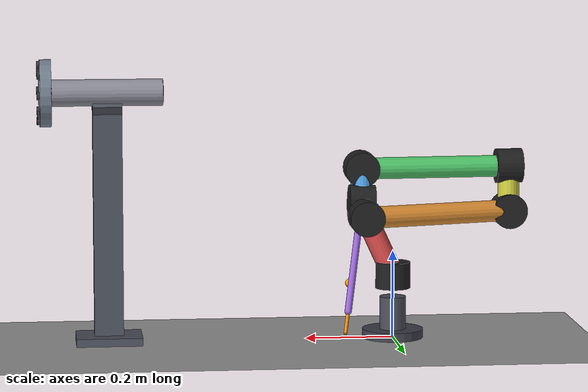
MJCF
<?xml version='1.0' encoding='utf-8'?>
<mujoco model="franka_flange_inspection">
  <compiler angle="radian" autolimits="true" />
  <option gravity="0 0 -9.81" timestep="0.002" integrator="RK4" />
  <size nuser_actuator="5" />
  <statistic extent="1" />
  <visual>
    <global offwidth="1280" offheight="800" />
  </visual>
  <asset>
    <texture name="grid_floor" type="2d" builtin="checker" rgb1="0.72 0.72 0.72" rgb2="0.48 0.48 0.48" width="512" height="512" />
    <material name="floor_mat" texture="grid_floor" texrepeat="8 8" reflectance="0.1" />
    <texture name="skybox" type="skybox" builtin="gradient" rgb1="0.70 0.78 0.90" rgb2="0.20 0.30 0.50" width="512" height="512" />

    </asset>

  <default>
    <geom contype="0" conaffinity="0" condim="3" />
    <site size="0.008" rgba="1 1 0 1" type="sphere" />
    <default class="panda">
      <joint pos="0 0 0" axis="0 0 1" limited="true" />
      <position forcelimited="true" ctrllimited="true" user="1002 40 2001 -0.005 0.005" />
      <default class="panda_viz">
        <geom contype="0" conaffinity="0" group="0" type="mesh" rgba=".92 .92 .95 1" />
      </default>
      <default class="panda_grey_viz">
        <geom contype="0" conaffinity="0" group="0" type="mesh" rgba=".4 .4 .4 1" />
      </default>
      <default class="panda_col">
        <geom contype="0" conaffinity="0" group="3" type="mesh" rgba=".5 .6 .7 .25" />
      </default>
      <default class="panda_arm">
        <joint damping="100" />
      </default>
      <default class="panda_forearm">
        <joint damping="10" />
      </default>
    </default>
  </default>

  <worldbody>
    <light name="sun" pos="0.5 0 3" dir="0 0 -1" diffuse="0.8 0.8 0.8" castshadow="true" />
    <light name="fill" pos="-1 1 2" dir="0.3 -0.3 -1" diffuse="0.3 0.3 0.3" castshadow="false" />
    <geom name="floor" type="plane" size="4 4 0.1" pos="0 0 0" material="floor_mat" contype="1" conaffinity="1" />
    <site name="world_origin" pos="0 0 0" size="0.018" rgba="1 1 1 1" />

    <body name="base" pos="0 0 0">
      <geom name="foot" type="cylinder" fromto="0 0 0 0 0 0.02" size="0.07" rgba="0.25 0.25 0.3 1" />
      <geom name="column" type="cylinder" fromto="0 0 0.02 0 0 0.0948" size="0.03" rgba="0.3 0.3 0.35 1" />
      <body name="link1" pos="0.000000 0.000000 0.144763" quat="0.002699 0.000000 0.000000 -0.999996">
        <joint name="q1" />
        <geom name="link1_g" type="capsule" fromto="0 0 0 -0.061099 0.000000 0.132184" size="0.025" rgba="0.85 0.3 0.3 1" contype="2" conaffinity="1" />
        <geom name="j1_g" type="cylinder" size="0.04 0.03" rgba="0.12 0.12 0.12 1" contype="2" conaffinity="1" />
        <body name="link2" pos="-0.061099 0.000000 0.132184" quat="0.707799 -0.706413 0.000828 0.000830">
          <joint name="q2" />
          <geom name="link2_g" type="capsule" fromto="0 0 0 0.345932 0.000000 0.091502" size="0.025" rgba="0.85 0.55 0.2 1" contype="2" conaffinity="1" />
          <geom name="j2_g" type="cylinder" size="0.04 0.03" rgba="0.12 0.12 0.12 1" contype="2" conaffinity="1" />
          <body name="link3" pos="0.345932 0.000000 0.091502" quat="0.704644 -0.001551 -0.001561 -0.709558">
            <joint name="q3" />
            <geom name="link3_g" type="capsule" fromto="0 0 0 0.103901 0.000000 0.005000" size="0.025" rgba="0.8 0.8 0.25 1" contype="2" conaffinity="1" />
            <geom name="j3_g" type="cylinder" size="0.04 0.03" rgba="0.12 0.12 0.12 1" contype="2" conaffinity="1" />
            <body name="link4" pos="0.103901 0.000000 0.005000" quat="0.705697 0.708499 0.003291 -0.003278">
              <joint name="q4" />
              <geom name="link4_g" type="capsule" fromto="0 0 0 -0.000588 0.000000 0.344628" size="0.025" rgba="0.3 0.75 0.4 1" contype="2" conaffinity="1" />
              <geom name="j4_g" type="cylinder" size="0.04 0.03" rgba="0.12 0.12 0.12 1" contype="2" conaffinity="1" />
              <body name="link5" pos="-0.000588 0.000000 0.344628" quat="0.013053 -0.013195 -0.710781 -0.703168">
                <joint name="q5" />
                <geom name="link5_g" type="capsule" fromto="0 0 0 0.074472 0.000000 -0.024818" size="0.025" rgba="0.3 0.6 0.85 1" contype="2" conaffinity="1" />
                <geom name="j5_g" type="cylinder" size="0.04 0.03" rgba="0.12 0.12 0.12 1" contype="2" conaffinity="1" />
                <body name="link6" pos="0.074472 0.000000 -0.024818" quat="0.501595 -0.493208 0.498313 0.506787">
                  <joint name="q6" />
                  <geom name="link6_g" type="capsule" fromto="0 0 0 0.070882 -0.244194 0.030304" size="0.008" rgba="0.6 0.4 0.85 1" contype="0" conaffinity="0" />
                  <geom name="j6_g" type="cylinder" size="0.04 0.03" rgba="0.12 0.12 0.12 1" contype="0" conaffinity="0" />
                  <body name="ee" pos="0.070882 -0.244194 0.030304" quat="0.724562 -0.689210 0.000000 0.000000">
                    <site name="tcp" size="0.004" rgba="1 0 0 1" />
                    <geom name="torch_g" type="capsule" fromto="0 0 0 0.01384 -0.00829 -0.04733" size="0.004" rgba="0.95 0.55 0.05 1" contype="0" conaffinity="0" />
                    <site name="torch_tip" pos="0.01384 -0.00829 -0.04733" size="0.004" rgba="1 0.5 0 1" />
                    <body name="d405_mount" pos="-0.03667 0.00798 0.05980" quat="0.68961 0.06423 -0.13501 -0.70858">
                      <inertial pos="0 0 0" mass="0.05" diaginertia="1e-5 1e-5 1e-5" />
                      <site name="camera_optical_center" pos="0 0 0" size="0.010" rgba="1 0.6 0 0.9" />
                      <camera name="d405_camera" mode="fixed" pos="0 0 0" fovy="65" />
                    </body>
                  </body>
                </body>
              </body>
            </body>
          </body>
        </body>
      </body>
    </body>
  <body name="pipe_flange_assembly" pos="0.6500 0.0000 0.5700" euler="0 1.5708 0">
      <geom name="pipe_outer" type="cylinder" pos="0 0 0" size="0.03025 0.1250" rgba="0.55 0.55 0.60 1" contype="1" conaffinity="1" />
      <geom name="pipe_bore" type="cylinder" pos="0 0 0" size="0.0271 0.1260" rgba="0.12 0.12 0.12 1" />
      <geom name="flange_disc" type="cylinder" pos="0 0 0.13775" size="0.0760 0.01275" rgba="0.45 0.50 0.56 1" contype="0" conaffinity="0" />
      <geom name="flange_bore" type="cylinder" pos="0 0 0.13775" size="0.03025 0.01375" rgba="0.11 0.11 0.11 1" />
      <geom name="raised_face" type="cylinder" pos="0 0 0.1515" size="0.0502 0.0010" rgba="0.62 0.64 0.67 1" />
      <geom name="raised_bore" type="cylinder" pos="0 0 0.1515" size="0.03025 0.0015" rgba="0.10 0.10 0.10 1" />
      <geom name="bolt_0" type="cylinder" pos=" 0.0628  0.0000 0.1545" size="0.0093 0.0025" rgba="0.22 0.22 0.22 1" />
      <geom name="bolt_1" type="cylinder" pos=" 0.0444  0.0444 0.1545" size="0.0093 0.0025" rgba="0.22 0.22 0.22 1" />
      <geom name="bolt_2" type="cylinder" pos=" 0.0000  0.0628 0.1545" size="0.0093 0.0025" rgba="0.22 0.22 0.22 1" />
      <geom name="bolt_3" type="cylinder" pos="-0.0444  0.0444 0.1545" size="0.0093 0.0025" rgba="0.22 0.22 0.22 1" />
      <geom name="bolt_4" type="cylinder" pos="-0.0628  0.0000 0.1545" size="0.0093 0.0025" rgba="0.22 0.22 0.22 1" />
      <geom name="bolt_5" type="cylinder" pos="-0.0444 -0.0444 0.1545" size="0.0093 0.0025" rgba="0.22 0.22 0.22 1" />
      <geom name="bolt_6" type="cylinder" pos=" 0.0000 -0.0628 0.1545" size="0.0093 0.0025" rgba="0.22 0.22 0.22 1" />
      <geom name="bolt_7" type="cylinder" pos=" 0.0444 -0.0444 0.1545" size="0.0093 0.0025" rgba="0.22 0.22 0.22 1" />
      <geom name="hole_0" type="cylinder" pos=" 0.0628  0.0000 0.1535" size="0.0063 0.0012" rgba="0.04 0.04 0.04 1" />
      <geom name="hole_1" type="cylinder" pos=" 0.0444  0.0444 0.1535" size="0.0063 0.0012" rgba="0.04 0.04 0.04 1" />
      <geom name="hole_2" type="cylinder" pos=" 0.0000  0.0628 0.1535" size="0.0063 0.0012" rgba="0.04 0.04 0.04 1" />
      <geom name="hole_3" type="cylinder" pos="-0.0444  0.0444 0.1535" size="0.0063 0.0012" rgba="0.04 0.04 0.04 1" />
      <geom name="hole_4" type="cylinder" pos="-0.0628  0.0000 0.1535" size="0.0063 0.0012" rgba="0.04 0.04 0.04 1" />
      <geom name="hole_5" type="cylinder" pos="-0.0444 -0.0444 0.1535" size="0.0063 0.0012" rgba="0.04 0.04 0.04 1" />
      <geom name="hole_6" type="cylinder" pos=" 0.0000 -0.0628 0.1535" size="0.0063 0.0012" rgba="0.04 0.04 0.04 1" />
      <geom name="hole_7" type="cylinder" pos=" 0.0444 -0.0444 0.1535" size="0.0063 0.0012" rgba="0.04 0.04 0.04 1" />
      <site name="flange_center" pos="0 0 0.1250" size="0.013" rgba="1 0 0 0" />
      <site name="flange_frame_y" pos="0 0.08 0.1250" size="0.005 0.08" euler="1.5708 0 0" rgba="0 1 0 0" type="cylinder" />
      <site name="flange_frame_x" pos="0.08 0 0.1250" size="0.005 0.08" euler="0 1.5708 0" rgba="1 0 0 0" type="cylinder" />
      <site name="flange_frame_z" pos="0 0 0.2050" size="0.005 0.08" rgba="0 0 1 0" type="cylinder" />
    </body>

    <body name="pipe_supporter" pos="0.6500 0.0000 0.0000">
      <geom name="supp_base"  type="box" pos="0 0 0.009"        size="0.075 0.055 0.009"  rgba="0.30 0.32 0.36 1" contype="0" conaffinity="0"/>
      <geom name="supp_col"   type="box" pos="0 0 0.267"        size="0.033 0.018 0.258"  rgba="0.30 0.32 0.36 1" contype="0" conaffinity="0"/>
      <geom name="supp_arm_l" type="box" pos="0 -0.024 0.534"   size="0.033 0.005 0.016"  euler="-40 0 0" rgba="0.30 0.32 0.36 1" contype="0" conaffinity="0"/>
      <geom name="supp_arm_r" type="box" pos="0  0.024 0.534"   size="0.033 0.005 0.016"  euler=" 40 0 0" rgba="0.30 0.32 0.36 1" contype="0" conaffinity="0"/>
    </body>

    <body name="traj_markers" pos="0 0 0">
      <site name="wp_00" pos="0.4000  0.1652 0.5700" size="0.010" rgba="0 1 1 0" />
      <site name="wp_01" pos="0.4000  0.1627 0.5987" size="0.010" rgba="0 1 1 0" />
      <site name="wp_02" pos="0.4000  0.1553 0.6265" size="0.010" rgba="0 1 1 0" />
      <site name="wp_03" pos="0.4000  0.1431 0.6526" size="0.010" rgba="0 1 1 0" />
      <site name="wp_04" pos="0.4000  0.1266 0.6762" size="0.010" rgba="0 1 1 0" />
      <site name="wp_05" pos="0.4000  0.1062 0.6966" size="0.010" rgba="0 1 1 0" />
      <site name="wp_06" pos="0.4000  0.0826 0.7131" size="0.010" rgba="0 1 1 0" />
      <site name="wp_07" pos="0.4000  0.0565 0.7253" size="0.010" rgba="0 1 1 0" />
      <site name="wp_08" pos="0.4000  0.0287 0.7327" size="0.010" rgba="0 1 1 0" />
      <site name="wp_09" pos="0.4000  0.0000 0.7352" size="0.010" rgba="0 1 1 0" />
      <site name="wp_10" pos="0.4000 -0.0287 0.7327" size="0.010" rgba="0 1 1 0" />
      <site name="wp_11" pos="0.4000 -0.0565 0.7253" size="0.010" rgba="0 1 1 0" />
      <site name="wp_12" pos="0.4000 -0.0826 0.7131" size="0.010" rgba="0 1 1 0" />
      <site name="wp_13" pos="0.4000 -0.1062 0.6966" size="0.010" rgba="0 1 1 0" />
      <site name="wp_14" pos="0.4000 -0.1266 0.6762" size="0.010" rgba="0 1 1 0" />
      <site name="wp_15" pos="0.4000 -0.1431 0.6526" size="0.010" rgba="0 1 1 0" />
      <site name="wp_16" pos="0.4000 -0.1553 0.6265" size="0.010" rgba="0 1 1 0" />
      <site name="wp_17" pos="0.4000 -0.1627 0.5987" size="0.010" rgba="0 1 1 0" />
      <site name="wp_18" pos="0.4000 -0.1652 0.5700" size="0.010" rgba="0 1 1 0" />
      <site name="wp_19" pos="0.4000 -0.1627 0.5413" size="0.010" rgba="0 1 1 0" />
      <site name="wp_20" pos="0.4000 -0.1553 0.5135" size="0.010" rgba="0 1 1 0" />
      <site name="wp_21" pos="0.4000 -0.1431 0.4874" size="0.010" rgba="0 1 1 0" />
      <site name="wp_22" pos="0.4000 -0.1266 0.4638" size="0.010" rgba="0 1 1 0" />
      <site name="wp_23" pos="0.4000 -0.1062 0.4434" size="0.010" rgba="0 1 1 0" />
      <site name="wp_24" pos="0.4000 -0.0826 0.4269" size="0.010" rgba="0 1 1 0" />
      <site name="wp_25" pos="0.4000 -0.0565 0.4147" size="0.010" rgba="0 1 1 0" />
      <site name="wp_26" pos="0.4000 -0.0287 0.4073" size="0.010" rgba="0 1 1 0" />
      <site name="wp_27" pos="0.4000 -0.0000 0.4048" size="0.010" rgba="0 1 1 0" />
      <site name="wp_28" pos="0.4000  0.0287 0.4073" size="0.010" rgba="0 1 1 0" />
      <site name="wp_29" pos="0.4000  0.0565 0.4147" size="0.010" rgba="0 1 1 0" />
      <site name="wp_30" pos="0.4000  0.0826 0.4269" size="0.010" rgba="0 1 1 0" />
      <site name="wp_31" pos="0.4000  0.1062 0.4434" size="0.010" rgba="0 1 1 0" />
      <site name="wp_32" pos="0.4000  0.1266 0.4638" size="0.010" rgba="0 1 1 0" />
      <site name="wp_33" pos="0.4000  0.1431 0.4874" size="0.010" rgba="0 1 1 0" />
      <site name="wp_34" pos="0.4000  0.1553 0.5135" size="0.010" rgba="0 1 1 0" />
      <site name="wp_35" pos="0.4000  0.1627 0.5413" size="0.010" rgba="0 1 1 0" />
    </body>
  </worldbody>

  <actuator>
    <position name="p1" joint="q1" />
    <position name="p2" joint="q2" />
    <position name="p3" joint="q3" />
    <position name="p4" joint="q4" />
    <position name="p5" joint="q5" />
    <position name="p6" joint="q6" />
  </actuator>
  </mujoco>
